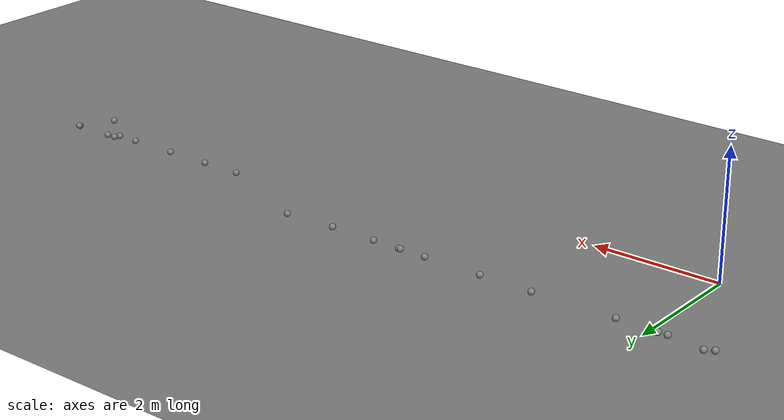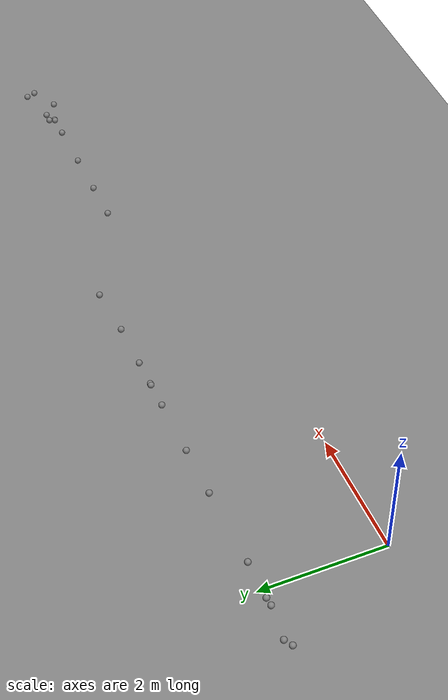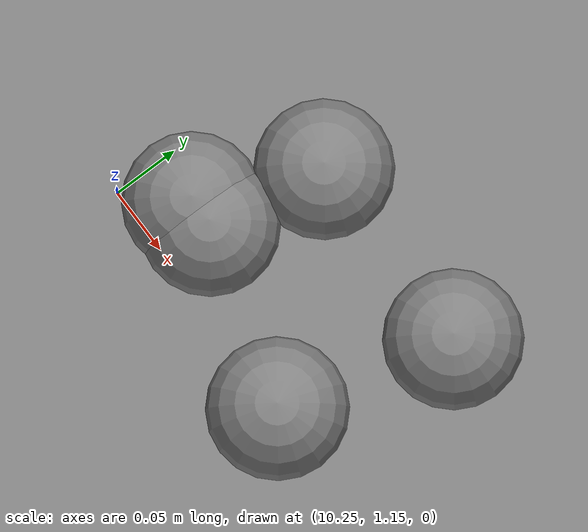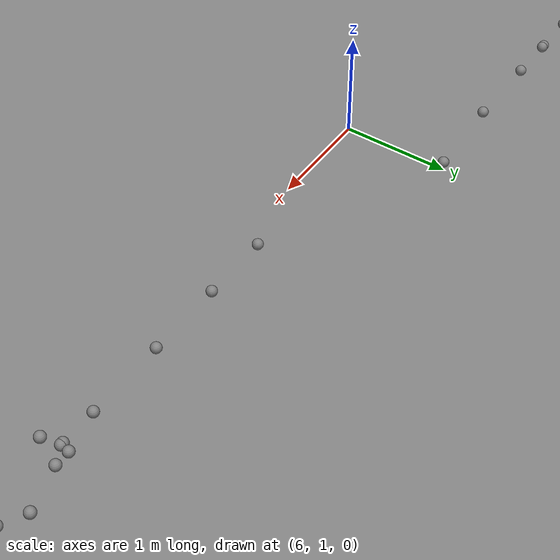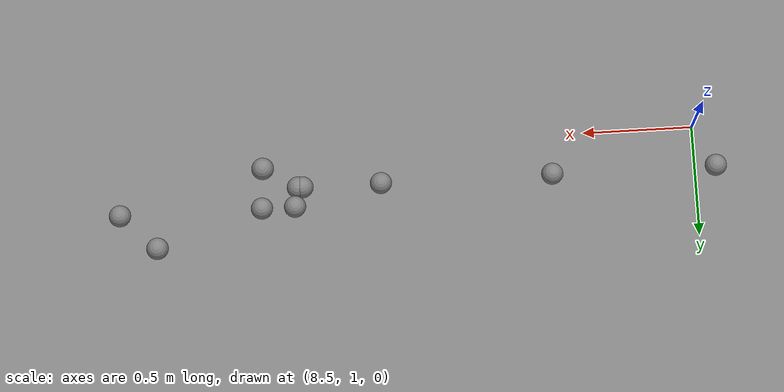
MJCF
<?xml version='1.0' encoding='utf-8'?>
<mujoco><worldbody><geom conaffinity="1" name="floor" size="100 100 .2" type="plane" /><body name="Hips" pos="-0.884179 2.00128 0.08973370000000001"><geom name="Hips_geom" size="0.05" type="sphere" /><body name="Bip01_Pelvis" pos="0.0 0.0 0.0"><geom name="Bip01_Pelvis_geom" size="0.05" type="sphere" /><body name="BN_Tail_01" pos="-0.124087 -0.0718302 0.0"><geom name="BN_Tail_01_geom" size="0.05" type="sphere" /><body name="BN_Tail_02" pos="0.682381 0.0 0.0"><geom name="BN_Tail_02_geom" size="0.05" type="sphere" /><body name="BN_Tail_03" pos="0.0 0.0 0.0"><geom name="BN_Tail_03_geom" size="0.05" type="sphere" /><body name="BN_Tail_04" pos="0.7669990000000001 0.0 0.0"><geom name="BN_Tail_04_geom" size="0.05" type="sphere" /></body><geom name="BN_Tail_03_geom" size="0.05" type="sphere" /><body name="Bip01_Spine" pos="0.13381200000000001 0.009601400000000001 0.00297562"><geom name="Bip01_Spine_geom" size="0.05" type="sphere" /><body name="Bip01_R_Thigh" pos="-0.130135 0.0103306 -0.24929700000000002"><geom name="Bip01_R_Thigh_geom" size="0.05" type="sphere" /><body name="Bip01_R_Calf" pos="0.839601 0.0 0.0"><geom name="Bip01_R_Calf_geom" size="0.05" type="sphere" /><body name="Bip01_R_HorseLink" pos="0.935807 0.0 0.0"><geom name="Bip01_R_HorseLink_geom" size="0.05" type="sphere" /><body name="Bip01_R_Foot" pos="0.42781900000000006 0.0 0.0"><geom name="Bip01_R_Foot_geom" size="0.05" type="sphere" /><body name="Bip01_R_Toe0" pos="0.0 0.0 0.0"><geom name="Bip01_R_Toe0_geom" size="0.05" type="sphere" /><body name="Bip01_R_Toe0Nub" pos="0.0282271 0.0 0.0"><geom name="Bip01_R_Toe0Nub_geom" size="0.05" type="sphere" /></body><geom name="Bip01_R_Toe0_geom" size="0.05" type="sphere" /><body name="Bip01_L_Thigh" pos="-0.13797800000000002 -0.00398788 0.23922500000000002"><geom name="Bip01_L_Thigh_geom" size="0.05" type="sphere" /><body name="Bip01_L_Calf" pos="0.839601 0.0 0.0"><geom name="Bip01_L_Calf_geom" size="0.05" type="sphere" /><body name="Bip01_L_HorseLink" pos="0.935808 0.0 0.0"><geom name="Bip01_L_HorseLink_geom" size="0.05" type="sphere" /><body name="Bip01_L_Foot" pos="0.42781900000000006 0.0 0.0"><geom name="Bip01_L_Foot_geom" size="0.05" type="sphere" /><body name="Bip01_L_Toe0" pos="0.0 0.0 0.0"><geom name="Bip01_L_Toe0_geom" size="0.05" type="sphere" /><body name="Bip01_L_Toe0Nub" pos="0.0282267 0.0 0.0"><geom name="Bip01_L_Toe0Nub_geom" size="0.05" type="sphere" /></body><geom name="Bip01_L_Toe0_geom" size="0.05" type="sphere" /><body name="Bip01_Spine1" pos="0.47781200000000007 -0.000598526 -2.03848e-06"><geom name="Bip01_Spine1_geom" size="0.05" type="sphere" /><body name="Bip01_Spine2" pos="0.752904 -0.000557518 -8.386370000000001e-06"><geom name="Bip01_Spine2_geom" size="0.05" type="sphere" /><body name="Bip01_Neck" pos="0.817986 0.043699800000000004 1.2707500000000002e-05"><geom name="Bip01_Neck_geom" size="0.05" type="sphere" /><body name="Bip01_R_Clavicle" pos="-0.21244000000000002 -0.391239 -0.244847"><geom name="Bip01_R_Clavicle_geom" size="0.05" type="sphere" /><body name="Bip01_R_UpperArm" pos="0.6624780000000001 0.0 0.0"><geom name="Bip01_R_UpperArm_geom" size="0.05" type="sphere" /><body name="Bip01_R_Forearm" pos="0.746098 0.0 0.0"><geom name="Bip01_R_Forearm_geom" size="0.05" type="sphere" /><body name="Bip01_R_Hand" pos="0.7805430000000001 0.0 0.0"><geom name="Bip01_R_Hand_geom" size="0.05" type="sphere" /><body name="Bip01_R_Finger0" pos="0.0 0.0 0.0"><geom name="Bip01_R_Finger0_geom" size="0.05" type="sphere" /><body name="Bip01_R_Finger0Nub" pos="0.357154 0.0 0.0"><geom name="Bip01_R_Finger0Nub_geom" size="0.05" type="sphere" /></body><geom name="Bip01_R_Finger0_geom" size="0.05" type="sphere" /><body name="Bip01_L_Clavicle" pos="-0.228998 -0.40991900000000003 0.19407200000000002"><geom name="Bip01_L_Clavicle_geom" size="0.05" type="sphere" /><body name="Bip01_L_UpperArm" pos="0.6624780000000001 0.0 0.0"><geom name="Bip01_L_UpperArm_geom" size="0.05" type="sphere" /><body name="Bip01_L_Forearm" pos="0.746098 0.0 0.0"><geom name="Bip01_L_Forearm_geom" size="0.05" type="sphere" /><body name="Bip01_L_Hand" pos="0.7805430000000001 0.0 0.0"><geom name="Bip01_L_Hand_geom" size="0.05" type="sphere" /><body name="Bip01_L_Finger0" pos="0.0 0.0 0.0"><geom name="Bip01_L_Finger0_geom" size="0.05" type="sphere" /><body name="Bip01_L_Finger0Nub" pos="0.35715300000000005 0.0 0.0"><geom name="Bip01_L_Finger0Nub_geom" size="0.05" type="sphere" /></body><geom name="Bip01_L_Finger0_geom" size="0.05" type="sphere" /><body name="Bip01_Neck1" pos="0.378076 -0.00028548200000000004 1.5258800000000002e-06"><geom name="Bip01_Neck1_geom" size="0.05" type="sphere" /><body name="Bip01_Head" pos="0.0 0.0 0.0"><geom name="Bip01_Head_geom" size="0.05" type="sphere" /><body name="BN_Beard_L" pos="0.6363810000000001 0.26665 0.1018"><geom name="BN_Beard_L_geom" size="0.05" type="sphere" /></body><geom name="Bip01_Head_geom" size="0.05" type="sphere" /><body name="BN_Beard_R" pos="0.6363800000000001 0.26665 -0.10180600000000001"><geom name="BN_Beard_R_geom" size="0.05" type="sphere" /></body><geom name="Bip01_Head_geom" size="0.05" type="sphere" /><body name="BN_Mouth" pos="0.0165208 0.0881832 -2.79663e-06"><geom name="BN_Mouth_geom" size="0.05" type="sphere" /><body name="BN_Thouge_01" pos="0.0 0.0 0.0"><geom name="BN_Thouge_01_geom" size="0.05" type="sphere" /><body name="BN_Thouge_02" pos="0.150253 0.0 0.0"><geom name="BN_Thouge_02_geom" size="0.05" type="sphere" /></body><geom name="BN_Thouge_01_geom" size="0.05" type="sphere" /><body name="BN_Ear_L" pos="0.12795399999999998 -0.137165 0.210918"><geom name="BN_Ear_L_geom" size="0.05" type="sphere" /></body><geom name="BN_Thouge_01_geom" size="0.05" type="sphere" /><body name="BN_Ear_R" pos="0.127953 -0.137164 -0.21093000000000003"><geom name="BN_Ear_R_geom" size="0.05" type="sphere" /></body><geom name="BN_Thouge_01_geom" size="0.05" type="sphere" /><body name="Bip01_HeadNub" pos="0.7945070000000001 0.0 0.0"><geom name="Bip01_HeadNub_geom" size="0.05" type="sphere" /></body><geom name="BN_Thouge_01_geom" size="0.05" type="sphere" /></body></body></body></body></body></body></body></body></body></body></body></body></body></body></body></body></body></body></body></body></body></body></body></body></body></body></body></body></body></body></body></body></body></worldbody></mujoco>
